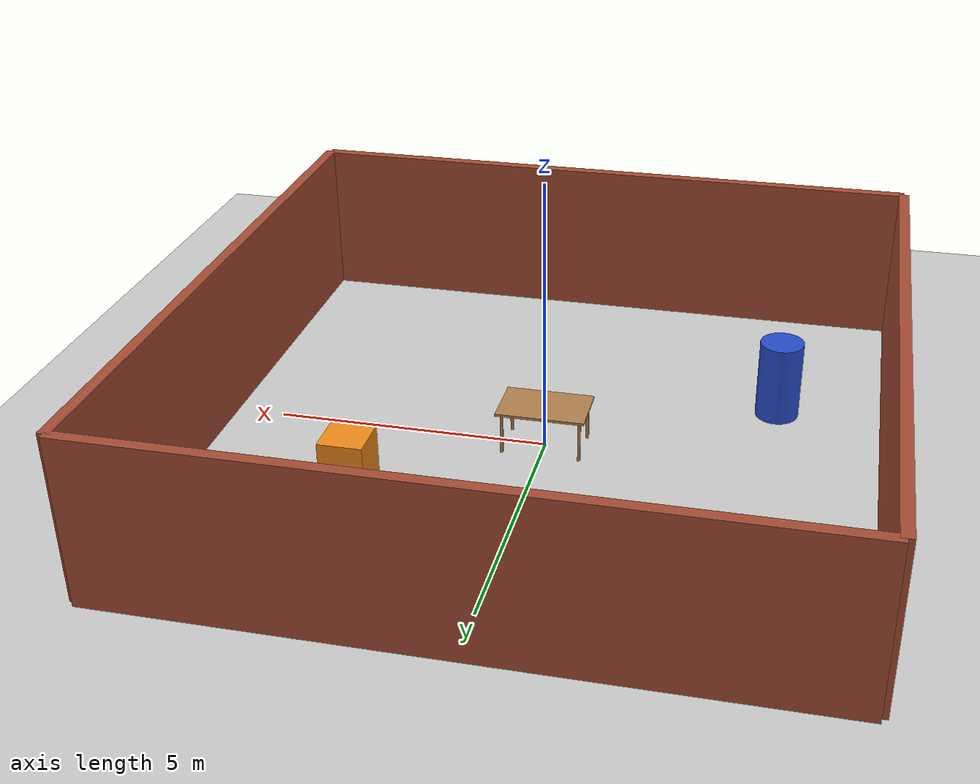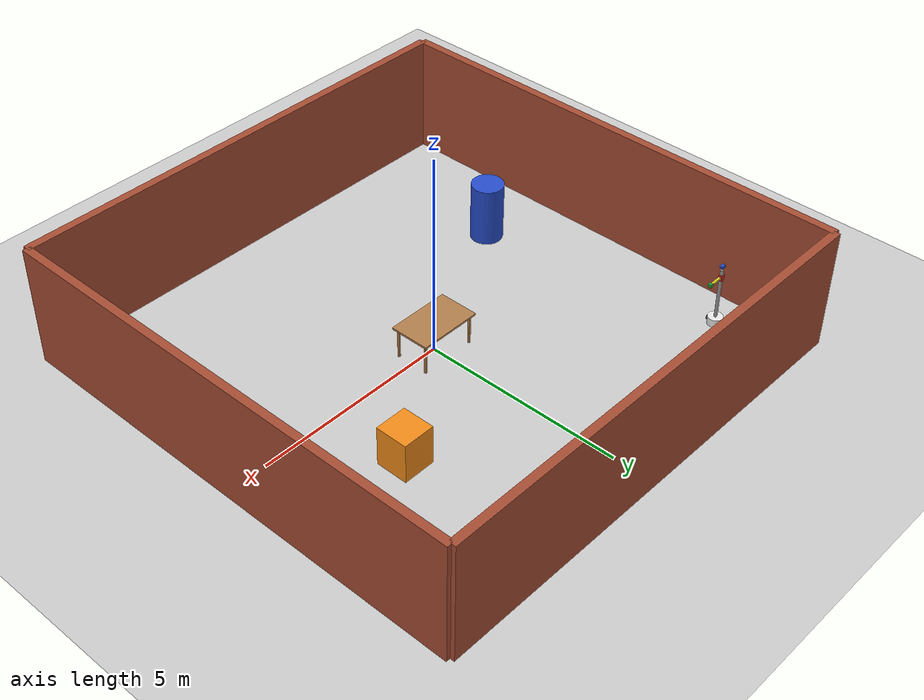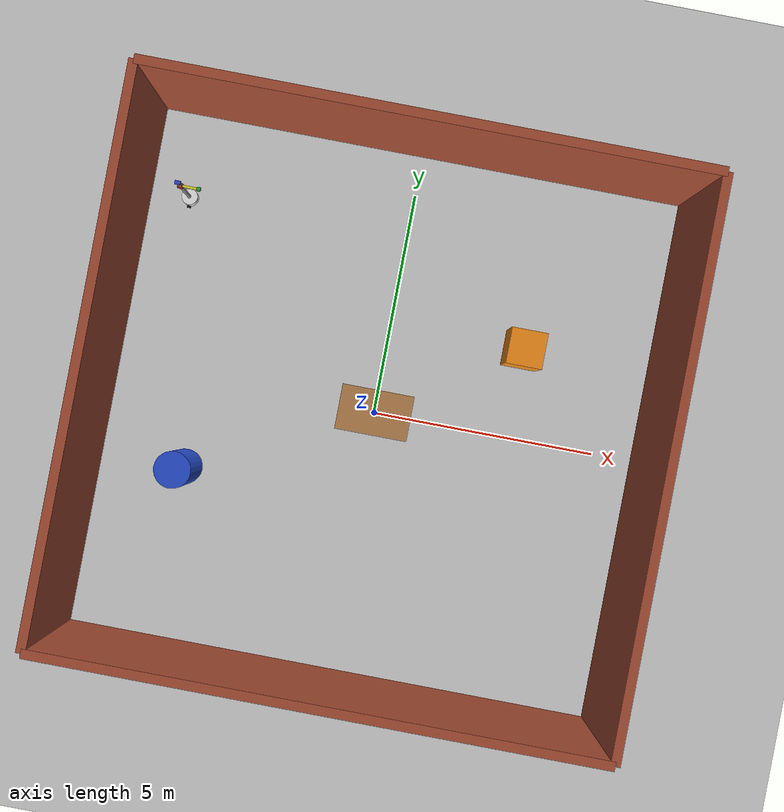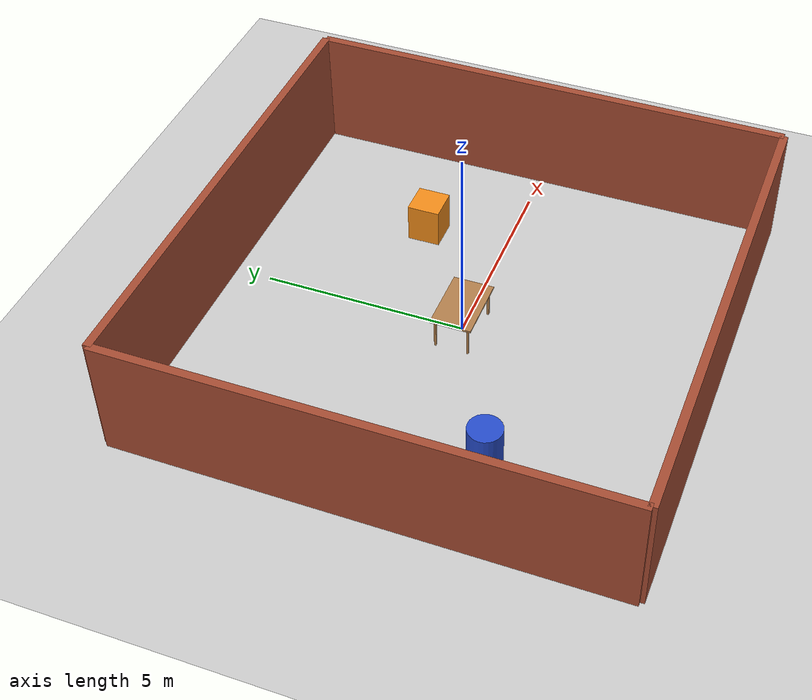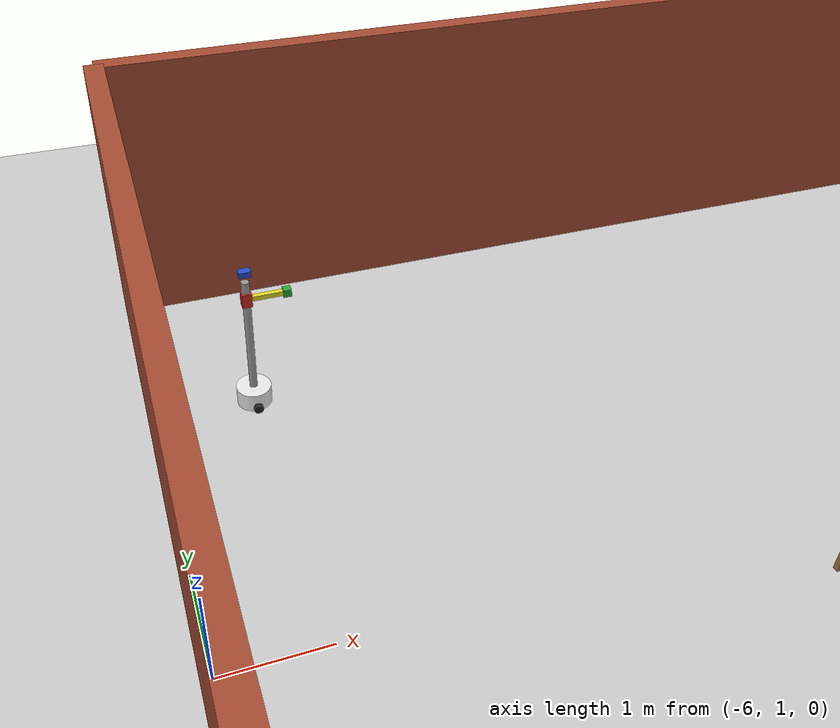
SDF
<?xml version="1.0" ?>
<sdf version="1.6">
  <world name="multi_world">

    <!-- Physics settings -->
    <physics type="ode">
      <max_step_size>0.001</max_step_size>
      <real_time_factor>1.0</real_time_factor>
      <real_time_update_rate>1000</real_time_update_rate>
    </physics>

    <!-- Lighting -->
    <light type="directional" name="sun">
      <cast_shadows>true</cast_shadows>
      <pose>0 0 10 0 0 0</pose>
      <diffuse>0.8 0.8 0.8 1</diffuse>
      <specular>0.2 0.2 0.2 1</specular>
      <attenuation>
        <range>1000</range>
        <constant>0.9</constant>
        <linear>0.01</linear>
        <quadratic>0.001</quadratic>
      </attenuation>
      <direction>-0.5 0.1 -0.9</direction>
    </light>

    <!-- Ground plane -->
    <model name="ground_plane">
      <static>true</static>
      <link name="link">
        <collision name="collision">
          <geometry>
            <plane>
              <normal>0 0 1</normal>
              <size>20 20</size>
            </plane>
          </geometry>
          <surface>
            <friction>
              <ode>
                <mu>100</mu>
                <mu2>50</mu2>
              </ode>
            </friction>
          </surface>
        </collision>
        <visual name="visual">
          <cast_shadows>false</cast_shadows>
          <geometry>
            <plane>
              <normal>0 0 1</normal>
              <size>20 20</size>
            </plane>
          </geometry>
          <material>
            <script>
              <uri>file://media/materials/scripts/gazebo.material</uri>
              <name>Gazebo/Grey</name>
            </script>
          </material>
        </visual>
      </link>
    </model>

    <!-- Room walls -->
    <model name="wall_north">
      <static>true</static>
      <pose>0 6 1.5 0 0 0</pose>
      <link name="link">
        <collision name="collision">
          <geometry><box><size>12 0.2 3</size></box></geometry>
        </collision>
        <visual name="visual">
          <geometry><box><size>12 0.2 3</size></box></geometry>
          <material>
            <script>
              <uri>file://media/materials/scripts/gazebo.material</uri>
              <name>Gazebo/Bricks</name>
            </script>
          </material>
        </visual>
      </link>
    </model>

    <model name="wall_south">
      <static>true</static>
      <pose>0 -6 1.5 0 0 0</pose>
      <link name="link">
        <collision name="collision">
          <geometry><box><size>12 0.2 3</size></box></geometry>
        </collision>
        <visual name="visual">
          <geometry><box><size>12 0.2 3</size></box></geometry>
          <material>
            <script>
              <uri>file://media/materials/scripts/gazebo.material</uri>
              <name>Gazebo/Bricks</name>
            </script>
          </material>
        </visual>
      </link>
    </model>

    <model name="wall_east">
      <static>true</static>
      <pose>6 0 1.5 0 0 1.5707</pose>
      <link name="link">
        <collision name="collision">
          <geometry><box><size>12 0.2 3</size></box></geometry>
        </collision>
        <visual name="visual">
          <geometry><box><size>12 0.2 3</size></box></geometry>
          <material>
            <script>
              <uri>file://media/materials/scripts/gazebo.material</uri>
              <name>Gazebo/Bricks</name>
            </script>
          </material>
        </visual>
      </link>
    </model>

    <model name="wall_west">
      <static>true</static>
      <pose>-6 0 1.5 0 0 1.5707</pose>
      <link name="link">
        <collision name="collision">
          <geometry><box><size>12 0.2 3</size></box></geometry>
        </collision>
        <visual name="visual">
          <geometry><box><size>12 0.2 3</size></box></geometry>
          <material>
            <script>
              <uri>file://media/materials/scripts/gazebo.material</uri>
              <name>Gazebo/Bricks</name>
            </script>
          </material>
        </visual>
      </link>
    </model>

    <!-- Simple obstacles -->
    <model name="obstacle_box_1">
      <static>true</static>
      <pose>3 2 0.5 0 0 0</pose>
      <link name="link">
        <collision name="collision">
          <geometry><box><size>0.8 0.8 1</size></box></geometry>
        </collision>
        <visual name="visual">
          <geometry><box><size>0.8 0.8 1</size></box></geometry>
          <material>
            <script>
              <uri>file://media/materials/scripts/gazebo.material</uri>
              <name>Gazebo/Orange</name>
            </script>
          </material>
        </visual>
      </link>
    </model>

    <model name="obstacle_cylinder_1">
      <static>true</static>
      <pose>-4 -2 0.75 0 0 0</pose>
      <link name="link">
        <collision name="collision">
          <geometry><cylinder><radius>0.4</radius><length>1.5</length></cylinder></geometry>
        </collision>
        <visual name="visual">
          <geometry><cylinder><radius>0.4</radius><length>1.5</length></cylinder></geometry>
          <material>
            <script>
              <uri>file://media/materials/scripts/gazebo.material</uri>
              <name>Gazebo/Blue</name>
            </script>
          </material>
        </visual>
      </link>
    </model>

    <!-- Main table -->
    <model name="main_table">
      <static>true</static>
      <pose>0 0 0 0 0 0</pose>

      <!-- Table top -->
      <link name="table_top">
        <pose>0 0 0.8 0 0 0</pose>
        <collision name="collision">
          <geometry><box><size>1.6 1.0 0.05</size></box></geometry>
        </collision>
        <visual name="visual">
          <geometry><box><size>1.6 1.0 0.05</size></box></geometry>
          <material>
            <script>
              <uri>file://media/materials/scripts/gazebo.material</uri>
              <name>Gazebo/WoodPallet</name>
            </script>
          </material>
        </visual>
      </link>

      <!-- Table legs -->
      <link name="leg1">
        <pose>-0.7 0.4 0.4 0 0 0</pose>
        <collision name="collision">
          <geometry><box><size>0.05 0.05 0.8</size></box></geometry>
        </collision>
        <visual name="visual">
          <geometry><box><size>0.05 0.05 0.8</size></box></geometry>
          <material>
            <script>
              <uri>file://media/materials/scripts/gazebo.material</uri>
              <name>Gazebo/WoodPallet</name>
            </script>
          </material>
        </visual>
      </link>

      <link name="leg2">
        <pose>0.7 0.4 0.4 0 0 0</pose>
        <collision name="collision">
          <geometry><box><size>0.05 0.05 0.8</size></box></geometry>
        </collision>
        <visual name="visual">
          <geometry><box><size>0.05 0.05 0.8</size></box></geometry>
          <material>
            <script>
              <uri>file://media/materials/scripts/gazebo.material</uri>
              <name>Gazebo/WoodPallet</name>
            </script>
          </material>
        </visual>
      </link>

      <link name="leg3">
        <pose>-0.7 -0.4 0.4 0 0 0</pose>
        <collision name="collision">
          <geometry><box><size>0.05 0.05 0.8</size></box></geometry>
        </collision>
        <visual name="visual">
          <geometry><box><size>0.05 0.05 0.8</size></box></geometry>
          <material>
            <script>
              <uri>file://media/materials/scripts/gazebo.material</uri>
              <name>Gazebo/WoodPallet</name>
            </script>
          </material>
        </visual>
      </link>

      <link name="leg4">
        <pose>0.7 -0.4 0.4 0 0 0</pose>
        <collision name="collision">
          <geometry><box><size>0.05 0.05 0.8</size></box></geometry>
        </collision>
        <visual name="visual">
          <geometry><box><size>0.05 0.05 0.8</size></box></geometry>
          <material>
            <script>
              <uri>file://media/materials/scripts/gazebo.material</uri>
              <name>Gazebo/WoodPallet</name>
            </script>
          </material>
        </visual>
      </link>
    </model>

    <!-- Glass on the table -->
    <model name="pickup_glass">
      <pose>0 0 0.87 0 0 0</pose>
      <link name="link">
        <collision name="collision">
          <geometry><cylinder><radius>0.035</radius><length>0.12</length></cylinder></geometry>
        </collision>
        <visual name="visual">
          <geometry><cylinder><radius>0.035</radius><length>0.12</length></cylinder></geometry>
          <material>
            <script>
              <uri>file://media/materials/scripts/gazebo.material</uri>
              <name>Gazebo/Blue</name>
            </script>
          </material>
        </visual>
        <inertial>
          <mass>0.15</mass>
          <inertia>
            <ixx>0.0002</ixx>
            <ixy>0</ixy>
            <ixz>0</ixz>
            <iyy>0.0002</iyy>
            <iyz>0</iyz>
            <izz>0.0001</izz>
          </inertia>
        </inertial>
      </link>
    </model>

    <!-- Better robot model - Stretch-like appearance but simplified -->
    <model name="stretch_robot">
      <pose>-5 4 0 0 0 0</pose>

      <!-- Mobile base -->
      <link name="base_link">
        <pose>0 0 0.1 0 0 0</pose>
        <collision name="collision">
          <geometry><cylinder><radius>0.18</radius><length>0.2</length></cylinder></geometry>
        </collision>
        <visual name="visual">
          <geometry><cylinder><radius>0.18</radius><length>0.2</length></cylinder></geometry>
          <material>
            <script>
              <uri>file://media/materials/scripts/gazebo.material</uri>
              <name>Gazebo/White</name>
            </script>
          </material>
        </visual>
        <inertial>
          <mass>50</mass>
          <inertia>
            <ixx>2</ixx>
            <ixy>0</ixy>
            <ixz>0</ixz>
            <iyy>2</iyy>
            <iyz>0</iyz>
            <izz>2</izz>
          </inertia>
        </inertial>
      </link>

      <!-- Left wheel -->
      <link name="left_wheel">
        <pose>0 0.2 0.05 1.5707 0 0</pose>
        <collision name="collision">
          <geometry><cylinder><radius>0.05</radius><length>0.04</length></cylinder></geometry>
        </collision>
        <visual name="visual">
          <geometry><cylinder><radius>0.05</radius><length>0.04</length></cylinder></geometry>
          <material>
            <script>
              <uri>file://media/materials/scripts/gazebo.material</uri>
              <name>Gazebo/Black</name>
            </script>
          </material>
        </visual>
        <inertial>
          <mass>2</mass>
          <inertia>
            <ixx>0.1</ixx>
            <ixy>0</ixy>
            <ixz>0</ixz>
            <iyy>0.1</iyy>
            <iyz>0</iyz>
            <izz>0.1</izz>
          </inertia>
        </inertial>
      </link>

      <!-- Right wheel -->
      <link name="right_wheel">
        <pose>0 -0.2 0.05 1.5707 0 0</pose>
        <collision name="collision">
          <geometry><cylinder><radius>0.05</radius><length>0.04</length></cylinder></geometry>
        </collision>
        <visual name="visual">
          <geometry><cylinder><radius>0.05</radius><length>0.04</length></cylinder></geometry>
          <material>
            <script>
              <uri>file://media/materials/scripts/gazebo.material</uri>
              <name>Gazebo/Black</name>
            </script>
          </material>
        </visual>
        <inertial>
          <mass>2</mass>
          <inertia>
            <ixx>0.1</ixx>
            <ixy>0</ixy>
            <ixz>0</ixz>
            <iyy>0.1</iyy>
            <iyz>0</iyz>
            <izz>0.1</izz>
          </inertia>
        </inertial>
      </link>

      <!-- Mast -->
      <link name="mast">
        <pose>0 0 0.8 0 0 0</pose>
        <collision name="collision">
          <geometry><cylinder><radius>0.04</radius><length>1.4</length></cylinder></geometry>
        </collision>
        <visual name="visual">
          <geometry><cylinder><radius>0.04</radius><length>1.4</length></cylinder></geometry>
          <material>
            <script>
              <uri>file://media/materials/scripts/gazebo.material</uri>
              <name>Gazebo/Grey</name>
            </script>
          </material>
        </visual>
        <inertial>
          <mass>8</mass>
          <inertia>
            <ixx>1</ixx>
            <ixy>0</ixy>
            <ixz>0</ixz>
            <iyy>1</iyy>
            <iyz>0</iyz>
            <izz>0.1</izz>
          </inertia>
        </inertial>
      </link>

      <!-- Arm base -->
      <link name="arm_base">
        <pose>0 0 1.3 0 0 0</pose>
        <collision name="collision">
          <geometry><box><size>0.1 0.1 0.15</size></box></geometry>
        </collision>
        <visual name="visual">
          <geometry><box><size>0.1 0.1 0.15</size></box></geometry>
          <material>
            <script>
              <uri>file://media/materials/scripts/gazebo.material</uri>
              <name>Gazebo/Red</name>
            </script>
          </material>
        </visual>
        <inertial>
          <mass>3</mass>
          <inertia>
            <ixx>0.1</ixx>
            <ixy>0</ixy>
            <ixz>0</ixz>
            <iyy>0.1</iyy>
            <iyz>0</iyz>
            <izz>0.1</izz>
          </inertia>
        </inertial>
      </link>

      <!-- Telescoping arm -->
      <link name="arm_extension">
        <pose>0.2 0 1.3 0 0 0</pose>
        <collision name="collision">
          <geometry><box><size>0.4 0.05 0.05</size></box></geometry>
        </collision>
        <visual name="visual">
          <geometry><box><size>0.4 0.05 0.05</size></box></geometry>
          <material>
            <script>
              <uri>file://media/materials/scripts/gazebo.material</uri>
              <name>Gazebo/Yellow</name>
            </script>
          </material>
        </visual>
        <inertial>
          <mass>2</mass>
          <inertia>
            <ixx>0.1</ixx>
            <ixy>0</ixy>
            <ixz>0</ixz>
            <iyy>0.1</iyy>
            <iyz>0</iyz>
            <izz>0.1</izz>
          </inertia>
        </inertial>
      </link>

      <!-- Simple gripper -->
      <link name="gripper">
        <pose>0.4 0 1.3 0 0 0</pose>
        <collision name="collision">
          <geometry><box><size>0.08 0.08 0.08</size></box></geometry>
        </collision>
        <visual name="visual">
          <geometry><box><size>0.08 0.08 0.08</size></box></geometry>
          <material>
            <script>
              <uri>file://media/materials/scripts/gazebo.material</uri>
              <name>Gazebo/Green</name>
            </script>
          </material>
        </visual>
        <inertial>
          <mass>1</mass>
          <inertia>
            <ixx>0.01</ixx>
            <ixy>0</ixy>
            <ixz>0</ixz>
            <iyy>0.01</iyy>
            <iyz>0</iyz>
            <izz>0.01</izz>
          </inertia>
        </inertial>
      </link>

      <!-- Head/camera -->
      <link name="head">
        <pose>0 0 1.6 0 0 0</pose>
        <collision name="collision">
          <geometry><box><size>0.12 0.08 0.06</size></box></geometry>
        </collision>
        <visual name="visual">
          <geometry><box><size>0.12 0.08 0.06</size></box></geometry>
          <material>
            <script>
              <uri>file://media/materials/scripts/gazebo.material</uri>
              <name>Gazebo/Blue</name>
            </script>
          </material>
        </visual>
        <inertial>
          <mass>1</mass>
          <inertia>
            <ixx>0.01</ixx>
            <ixy>0</ixy>
            <ixz>0</ixz>
            <iyy>0.01</iyy>
            <iyz>0</iyz>
            <izz>0.01</izz>
          </inertia>
        </inertial>
      </link>

      <!-- Joints -->
      <joint name="left_wheel_joint" type="revolute">
        <parent>base_link</parent>
        <child>left_wheel</child>
        <axis>
          <xyz>0 1 0</xyz>
        </axis>
      </joint>

      <joint name="right_wheel_joint" type="revolute">
        <parent>base_link</parent>
        <child>right_wheel</child>
        <axis>
          <xyz>0 1 0</xyz>
        </axis>
      </joint>

      <joint name="base_to_mast" type="fixed">
        <parent>base_link</parent>
        <child>mast</child>
      </joint>

      <joint name="mast_to_arm_base" type="prismatic">
        <parent>mast</parent>
        <child>arm_base</child>
        <axis>
          <xyz>0 0 1</xyz>
          <limit>
            <lower>0</lower>
            <upper>0.5</upper>
          </limit>
        </axis>
      </joint>

      <joint name="arm_base_to_extension" type="prismatic">
        <parent>arm_base</parent>
        <child>arm_extension</child>
        <axis>
          <xyz>1 0 0</xyz>
          <limit>
            <lower>0</lower>
            <upper>0.3</upper>
          </limit>
        </axis>
      </joint>

      <joint name="extension_to_gripper" type="fixed">
        <parent>arm_extension</parent>
        <child>gripper</child>
      </joint>

      <joint name="mast_to_head" type="fixed">
        <parent>mast</parent>
        <child>head</child>
      </joint>

    </model>

  </world>
</sdf>
